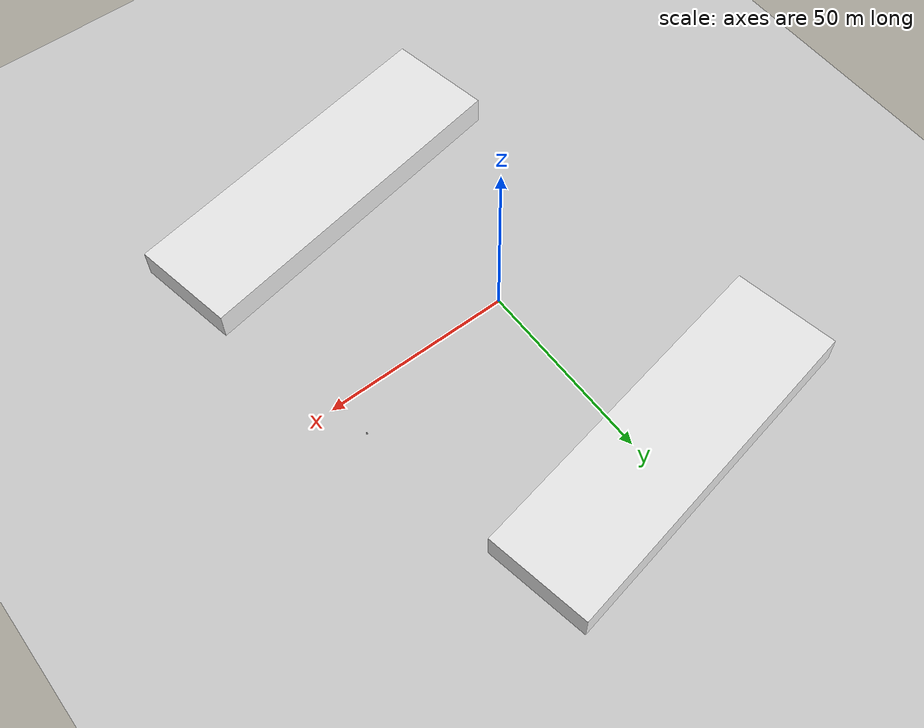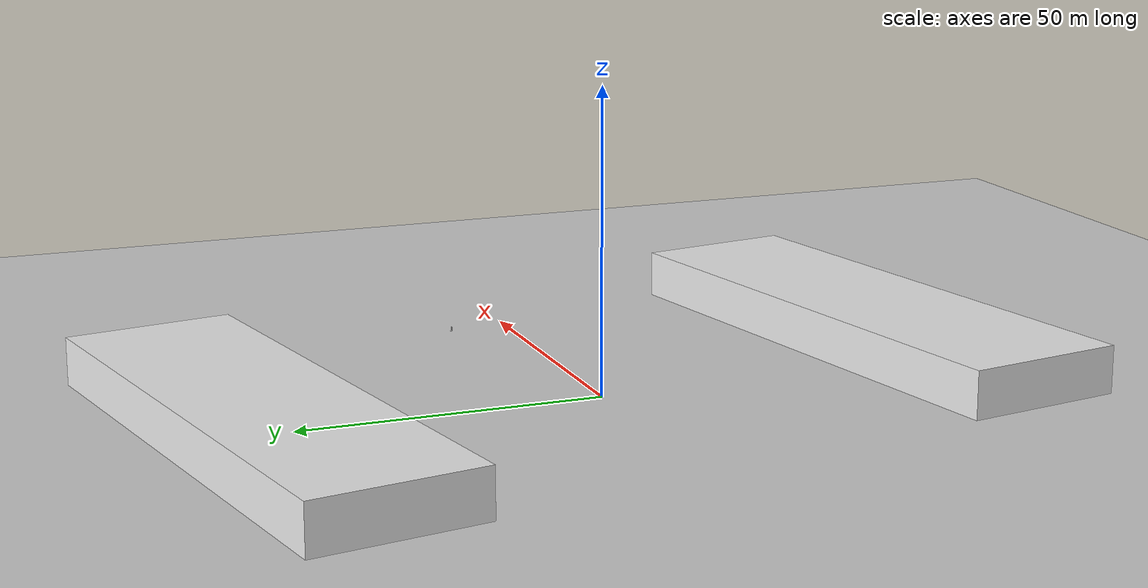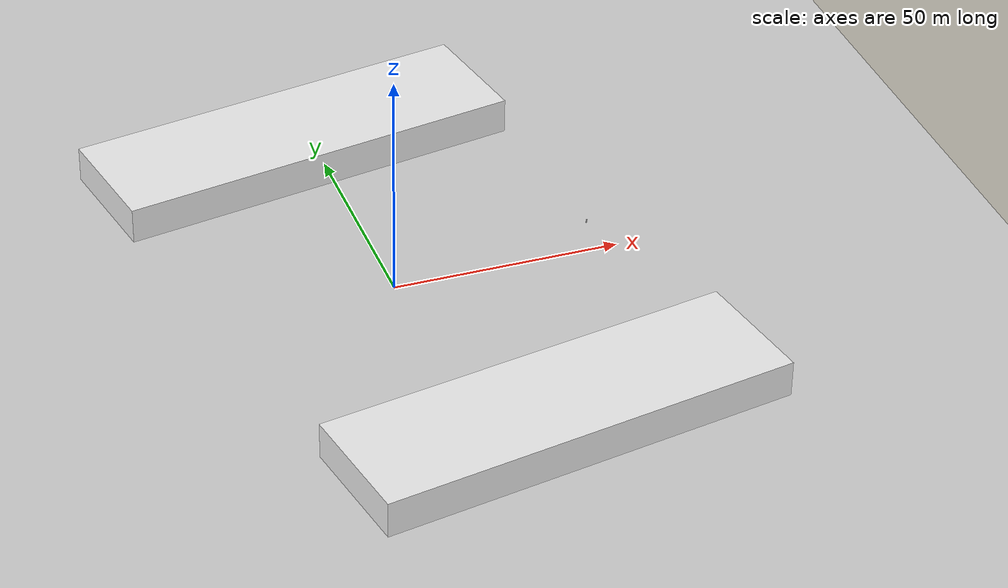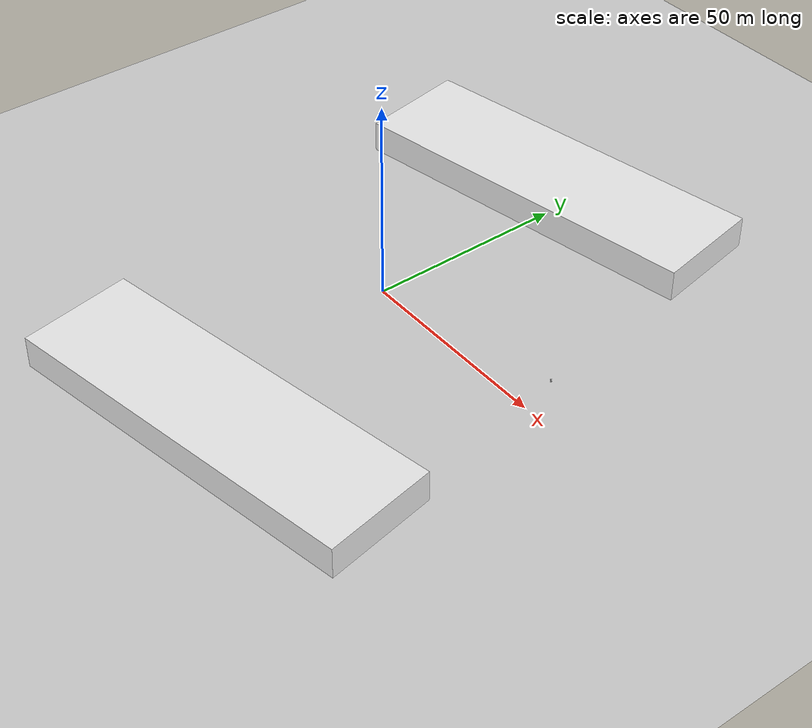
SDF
<sdf version="1.6">
  <world name="default">
    <include>
      <uri>model://sun</uri>
    </include>

     <model name="ground_plane">
      <static>true</static>
      <link name="link">
        <collision name="collision">
          <geometry>
            <plane>
              <normal>0 0 1</normal>
              <size>5000 5000</size>
            </plane>
          </geometry>
          <surface>
            <friction>
              <ode>
                <mu>100</mu>
                <mu2>50</mu2>
              </ode>
            </friction>
          </surface>
        </collision>

        <visual name="ground">
        <pose>0 0 -0.1 0 0 -1.57</pose>
        <cast_shadows>false</cast_shadows>
        <geometry>
          <plane>
            <normal>0 0 1</normal>
            <size>200 200</size>
          </plane>
        </geometry>
        <material>
          <script>
            <uri>file:///home/ubuntu/ardupilot_gazebo/materials/scripts</uri>
            <uri>file:///home/ubuntu/ardupilot_gazebo/materials/textures</uri>
            <name>Franklin</name>
          </script>
        </material>
      </visual>

      <visual name="landing_aruco_1000mm">
        <pose>0 0 0 0 0 -1.57</pose>
        <cast_shadows>false</cast_shadows>
        <geometry>
          <plane>
            <normal>0 0 1</normal>
            <size>1 1</size>
          </plane>
        </geometry>
        <material>
          <script>
            <uri>file:///home/ubuntu/ardupilot_gazebo/materials/scripts</uri>
            <uri>file:///home/ubuntu/ardupilot_gazebo/materials/textures</uri>
            <name>aruco_13_1000mm</name>
          </script>
        </material>
      </visual>

      <visual name="landing_aruco_750mm">
        <pose>2 0 0 0 0 -1.57</pose>
        <cast_shadows>false</cast_shadows>
        <geometry>
          <plane>
            <normal>0 0 1</normal>
            <size>0.75 0.75</size>
          </plane>
        </geometry>
        <material>
          <script>
            <uri>file:///home/ubuntu/ardupilot_gazebo/materials/scripts</uri>
            <uri>file:///home/ubuntu/ardupilot_gazebo/materials/textures</uri>
            <name>aruco_12_750mm</name>
          </script>
        </material>
      </visual>

      <visual name="landing_aruco_500mm">
        <pose>4 0 0 0 0 -1.57</pose>
        <cast_shadows>false</cast_shadows>
        <geometry>
          <plane>
            <normal>0 0 1</normal>
            <size>0.5 0.5</size>
          </plane>
        </geometry>
        <material>
          <script>
            <uri>file:///home/ubuntu/ardupilot_gazebo/materials/scripts</uri>
            <uri>file:///home/ubuntu/ardupilot_gazebo/materials/textures</uri>
            <name>aruco_11_500mm</name>
          </script>
        </material>
      </visual>

      <visual name="landing_aruco_250mm">
        <pose>6 0 0 0 0 -1.57</pose>
        <cast_shadows>false</cast_shadows>
        <geometry>
          <plane>
            <normal>0 0 1</normal>
            <size>0.25 0.25</size>
          </plane>
        </geometry>
        <material>
          <script>
            <uri>file:///home/ubuntu/ardupilot_gazebo/materials/scripts</uri>
            <uri>file:///home/ubuntu/ardupilot_gazebo/materials/textures</uri>
            <name>aruco_10_250mm</name>
          </script>
        </material>
      </visual>

      <visual name="landing_aruco_100mm">
        <pose>8 0 0 0 0 -1.57</pose>
        <cast_shadows>false</cast_shadows>
        <geometry>
          <plane>
            <normal>0 0 1</normal>
            <size>0.1 0.1</size>
          </plane>
        </geometry>
        <material>
          <script>
            <uri>file:///home/ubuntu/ardupilot_gazebo/materials/scripts</uri>
            <uri>file:///home/ubuntu/ardupilot_gazebo/materials/textures</uri>
            <name>aruco_9_100mm</name>
          </script>
        </material>
      </visual>

      </link>
    </model>

    <include>
      <name>bleachers_0</name>
      <uri>model://stadium_box</uri>
      <pose frame=''>-5 56 -0.1 0 0 0.18</pose>
    </include>

    <include>
      <name>bleachers_1</name>
      <uri>model://stadium_box</uri>
      <pose frame=''>16 -55 -0.1 0 0 0.18</pose>
    </include>

    <include>
      <name>hydrant_0</name>
      <uri>model://fire_hydrant</uri>
      <pose frame=''>47 10 -0.1 0 0 0</pose>
    </include>

  </world>
</sdf>

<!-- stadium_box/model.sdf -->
<sdf version='1.6'>
  <model name='stadium_box'>
    <link name='link_0'>
      <pose frame=''>0 0 0 0 -0 0</pose>

      <visual name='visual'>
        <pose frame=''>0 0 4 0 -0 0</pose>
        <geometry>
          <box>
            <size>92 28 8</size>
          </box>
        </geometry>
        <material>
          <lighting>1</lighting>
          <script>
            <uri>file://media/materials/scripts/gazebo.material</uri>
            <name>Gazebo/White</name>
          </script>
          <shader type='pixel'>
            <normal_map>__default__</normal_map>
          </shader>
          <ambient>0.3 0.3 0.3 1</ambient>
          <diffuse>0.7 0.7 0.7 1</diffuse>
          <specular>0.01 0.01 0.01 1</specular>
          <emissive>0 0 0 1</emissive>
        </material>
        <transparency>0</transparency>
        <cast_shadows>1</cast_shadows>
      </visual>
      <collision name='collision'>
        <laser_retro>0</laser_retro>
        <max_contacts>10</max_contacts>
        <pose frame=''>0 0 4 0 -0 0</pose>
        <geometry>
          <box>
            <size>92 28 8</size>
          </box>
        </geometry>
      </collision>
    </link>
    <static>1</static>
  </model>
</sdf>

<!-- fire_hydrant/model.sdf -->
<sdf version="1.5">
  <model name="fire_hydrant">
    <static>true</static>
    <link name="link">
      <collision name="collision">
        <geometry>
          <mesh>
            <uri>file://isr-testbed/fire_hydrant/meshes/fire_hydrant.dae</uri>
          </mesh>
        </geometry>
      </collision>
      <visual name="visual">
        <geometry>
          <mesh>
            <uri>file://isr-testbed/fire_hydrant/meshes/fire_hydrant.dae</uri>
          </mesh>
        </geometry>
      </visual>
    </link>
  </model>
</sdf>
